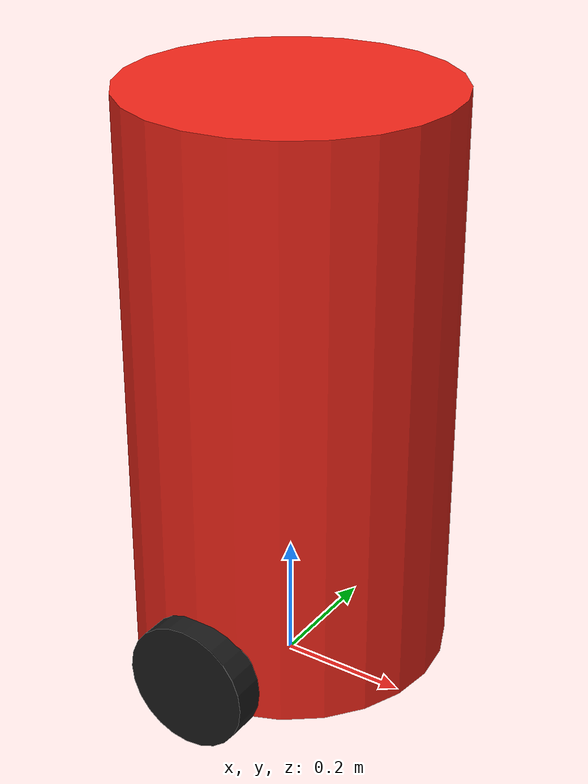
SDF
<?xml version="1.0" ?>
<sdf version="1.8">
  <model name="dynamic_obstacle">
    <pose>0 0 0.5 0 0 0</pose>
    <link name="base_link">
      <inertial>
        <mass>15.0</mass>
        <inertia>
          <ixx>1.0</ixx>
          <ixy>0</ixy>
          <ixz>0</ixz>
          <iyy>1.0</iyy>
          <iyz>0</iyz>
          <izz>0.5</izz>
        </inertia>
      </inertial>
      <collision name="collision">
        <geometry>
          <cylinder>
            <radius>0.25</radius>
            <length>0.9</length>
          </cylinder>
        </geometry>
      </collision>
      <visual name="visual">
        <geometry>
          <cylinder>
            <radius>0.25</radius>
            <length>0.9</length>
          </cylinder>
        </geometry>
        <material>
          <!-- Bright Red/Orange: Highly visible to human & camera -->
          <ambient>0.95 0.15 0.1 1</ambient>
          <diffuse>0.95 0.15 0.1 1</diffuse>
          <specular>0.2 0.2 0.2 1</specular>
        </material>
      </visual>
    </link>

    <!-- Wheels for dynamic differential drive in Gazebo Harmonic -->
    <link name="left_wheel">
      <pose>0 0.26 -0.4 1.5708 0 0</pose>
      <inertial>
        <mass>1.0</mass>
        <inertia>
          <ixx>0.001</ixx><ixy>0</ixy><ixz>0</ixz>
          <iyy>0.001</iyy><iyz>0</iyz>
          <izz>0.001</izz>
        </inertia>
      </inertial>
      <collision name="collision">
        <geometry>
          <cylinder>
            <radius>0.1</radius>
            <length>0.05</length>
          </cylinder>
        </geometry>
      </collision>
      <visual name="visual">
        <geometry>
          <cylinder>
            <radius>0.1</radius>
            <length>0.05</length>
          </cylinder>
        </geometry>
        <material>
          <ambient>0.1 0.1 0.1 1</ambient>
          <diffuse>0.1 0.1 0.1 1</diffuse>
        </material>
      </visual>
    </link>

    <link name="right_wheel">
      <pose>0 -0.26 -0.4 1.5708 0 0</pose>
      <inertial>
        <mass>1.0</mass>
        <inertia>
          <ixx>0.001</ixx><ixy>0</ixy><ixz>0</ixz>
          <iyy>0.001</iyy><iyz>0</iyz>
          <izz>0.001</izz>
        </inertia>
      </inertial>
      <collision name="collision">
        <geometry>
          <cylinder>
            <radius>0.1</radius>
            <length>0.05</length>
          </cylinder>
        </geometry>
      </collision>
      <visual name="visual">
        <geometry>
          <cylinder>
            <radius>0.1</radius>
            <length>0.05</length>
          </cylinder>
        </geometry>
        <material>
          <ambient>0.1 0.1 0.1 1</ambient>
          <diffuse>0.1 0.1 0.1 1</diffuse>
        </material>
      </visual>
    </link>

    <!-- Low friction casters for stability -->
    <link name="front_caster">
      <pose>0.2 0 -0.45 0 0 0</pose>
      <inertial>
        <mass>0.5</mass>
        <inertia>
          <ixx>0.0001</ixx><ixy>0</ixy><ixz>0</ixz>
          <iyy>0.0001</iyy><iyz>0</iyz>
          <izz>0.0001</izz>
        </inertia>
      </inertial>
      <collision name="collision">
        <geometry>
          <sphere>
            <radius>0.05</radius>
          </sphere>
        </geometry>
        <surface>
          <friction>
            <ode>
              <mu>0.01</mu>
              <mu2>0.01</mu2>
            </ode>
          </friction>
        </surface>
      </collision>
    </link>

    <link name="rear_caster">
      <pose>-0.2 0 -0.45 0 0 0</pose>
      <inertial>
        <mass>0.5</mass>
        <inertia>
          <ixx>0.0001</ixx><ixy>0</ixy><ixz>0</ixz>
          <iyy>0.0001</iyy><iyz>0</iyz>
          <izz>0.0001</izz>
        </inertia>
      </inertial>
      <collision name="collision">
        <geometry>
          <sphere>
            <radius>0.05</radius>
          </sphere>
        </geometry>
        <surface>
          <friction>
            <ode>
              <mu>0.01</mu>
              <mu2>0.01</mu2>
            </ode>
          </friction>
        </surface>
      </collision>
    </link>

    <joint name="left_wheel_joint" type="revolute">
      <parent>base_link</parent>
      <child>left_wheel</child>
      <axis>
        <xyz>0 0 1</xyz>
      </axis>
    </joint>

    <joint name="right_wheel_joint" type="revolute">
      <parent>base_link</parent>
      <child>right_wheel</child>
      <axis>
        <xyz>0 0 1</xyz>
      </axis>
    </joint>

    <joint name="front_caster_joint" type="fixed">
      <parent>base_link</parent>
      <child>front_caster</child>
    </joint>

    <joint name="rear_caster_joint" type="fixed">
      <parent>base_link</parent>
      <child>rear_caster</child>
    </joint>

    <plugin filename="gz-sim-diff-drive-system"
            name="gz::sim::systems::DiffDrive">
      <left_joint>left_wheel_joint</left_joint>
      <right_joint>right_wheel_joint</right_joint>
      <wheel_separation>0.52</wheel_separation>
      <wheel_radius>0.1</wheel_radius>
      <topic>/dynamic_obstacle/cmd_vel</topic>
      <odom_topic>/dynamic_obstacle/odom</odom_topic>
      <frame_id>odom</frame_id>
      <child_frame_id>dynamic_obstacle/base_link</child_frame_id>
      <publish_odom>true</publish_odom>
      <publish_odom_tf>false</publish_odom_tf>
    </plugin>
  </model>
</sdf>
